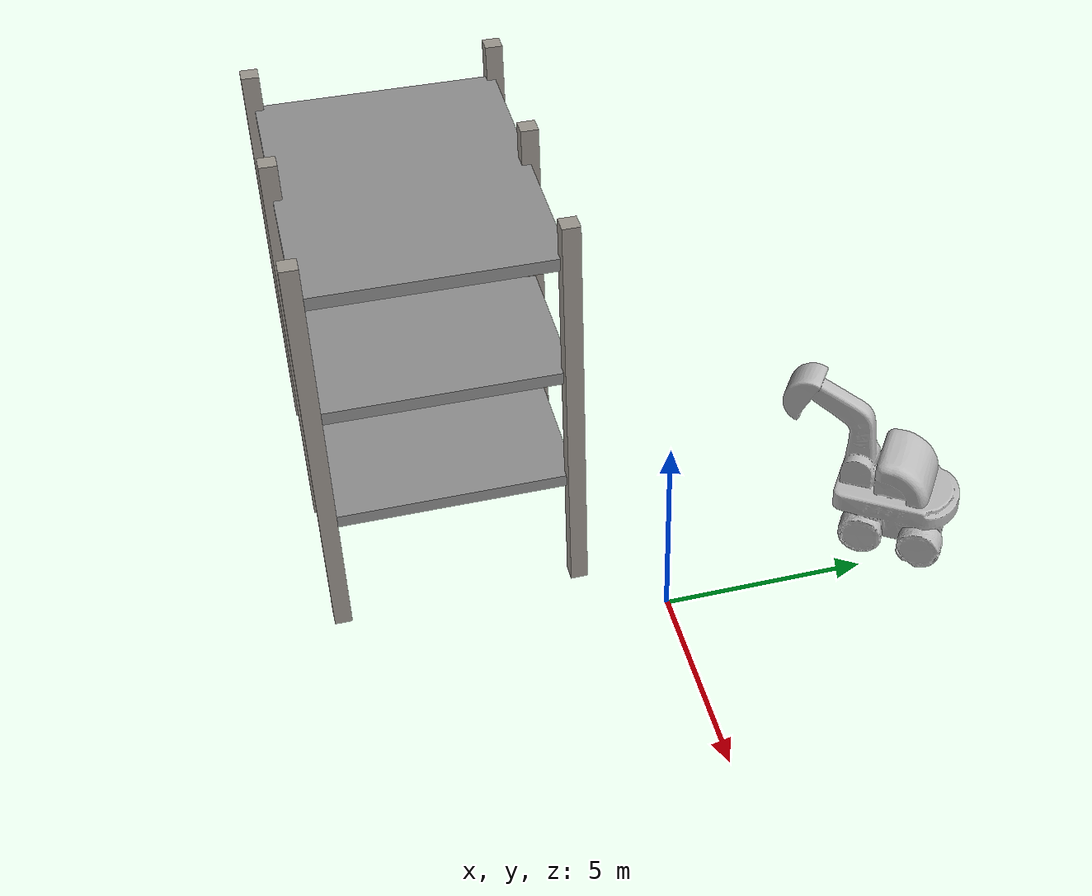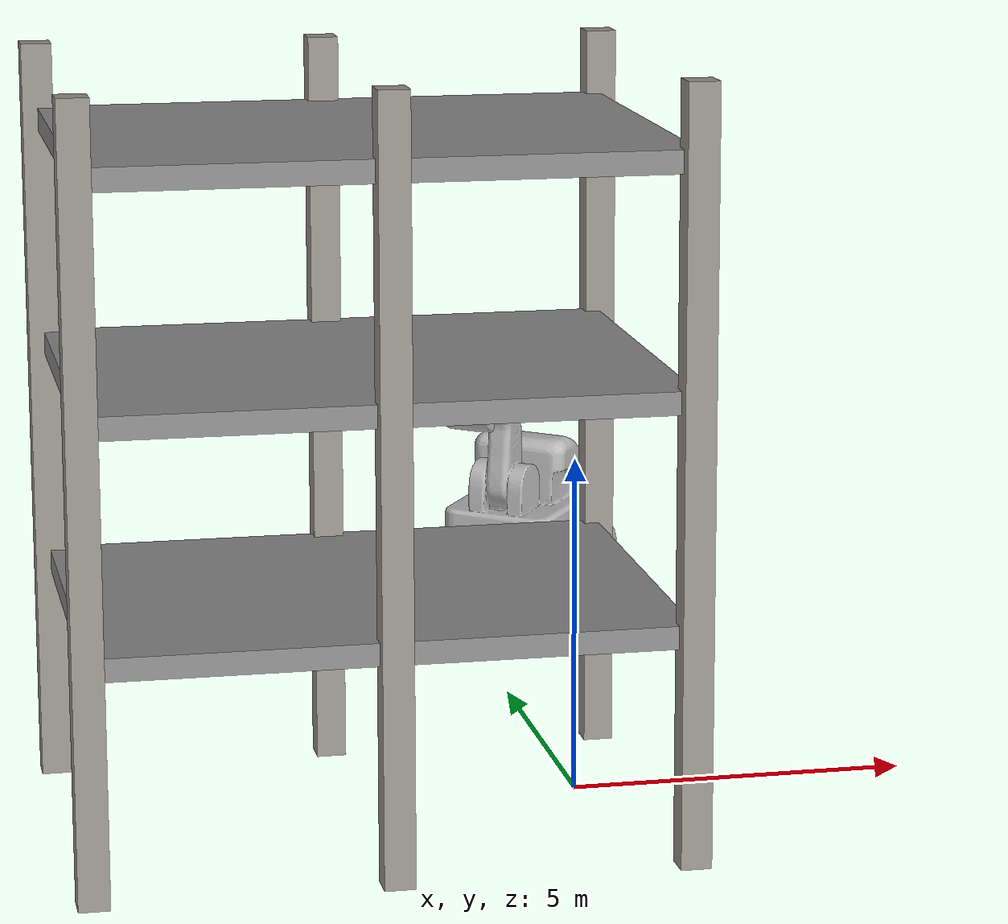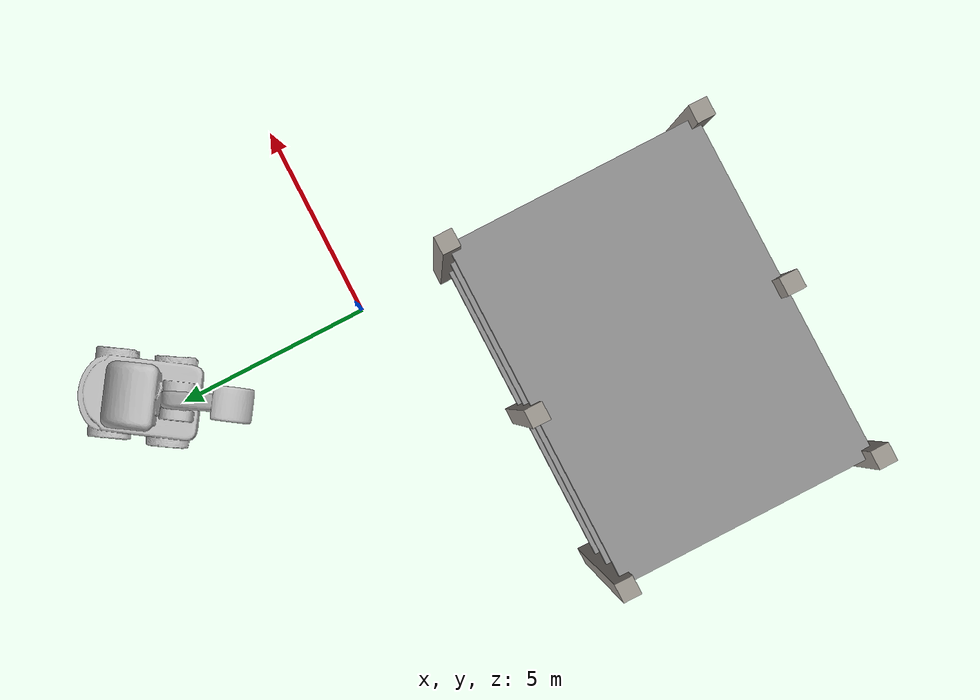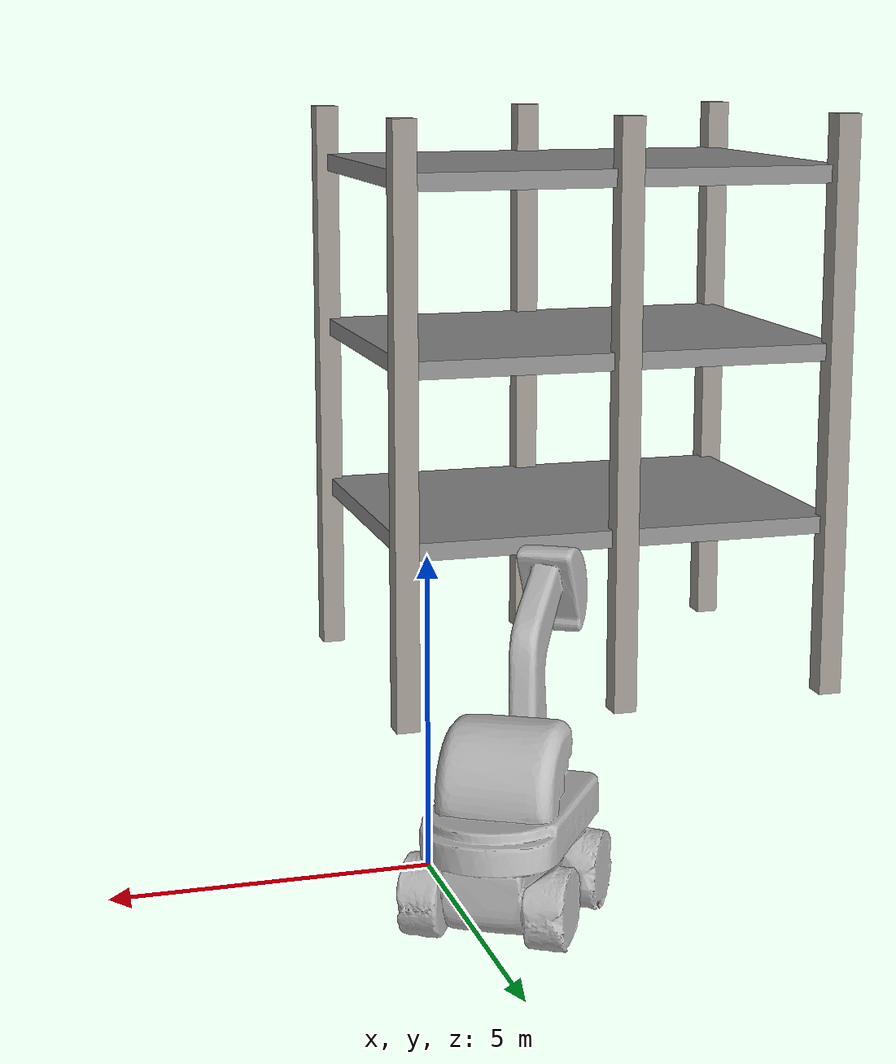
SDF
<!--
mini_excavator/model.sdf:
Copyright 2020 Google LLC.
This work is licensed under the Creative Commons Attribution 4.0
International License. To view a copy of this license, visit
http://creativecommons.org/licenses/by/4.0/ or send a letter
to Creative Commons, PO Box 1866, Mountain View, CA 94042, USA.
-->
<sdf version="1.6">
 <world name="construction_site">
  <physics name="4ms" type="ignored">
   <max_step_size>0.004</max_step_size>
   <real_time_factor>1.0</real_time_factor>
  </physics>
  <plugin filename="ignition-gazebo-physics-system" name="gz::sim::systems::Physics"/>
  <plugin filename="ignition-gazebo-scene-broadcaster-system" name="gz::sim::systems::SceneBroadcaster"/>
  <plugin filename="ignition-gazebo-user-commands-system" name="gz::sim::systems::UserCommands"/>
  <plugin filename="ignition-gazebo-sensors-system" name="gz::sim::systems::Sensors">
   <render_engine>ogre2</render_engine>
  </plugin>
  <light type="directional" name="sun">
   <pose>0 0 500 0 0 0</pose>
   <diffuse>0.8 0.8 0.8 1</diffuse>
   <specular>0.2 0.2 0.2 1</specular>
   <attenuation>
    <range>1000</range>
    <constant>0.9</constant>
    <linear>0.01</linear>
    <quadratic>0.001</quadratic>
   </attenuation>
   <direction>-0.5 0.1 -0.9</direction>
  </light>
  <include><name>building_frame</name><uri>model://building_frame</uri><pose>-4 -5 1.5 0 0 0</pose></include>
  <include><name>mini_excavator</name><uri>model://mini_excavator</uri><pose>0 5 1.5 0 0 -0.6</pose></include>
 </world>
</sdf>

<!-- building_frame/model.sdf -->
<sdf version="1.6">
  <model name="building_frame">
    <static>true</static>

    <link name="column_corner_pp">
      <pose>3.8 2.8 5.0 0 0 0</pose>
      <collision name="collision"><geometry><box><size>0.4 0.4 10.0</size></box></geometry></collision>
      <visual name="visual">
        <geometry><box><size>0.4 0.4 10.0</size></box></geometry>
        <material><ambient>0.55 0.53 0.5 1</ambient><diffuse>0.6 0.58 0.55 1</diffuse></material>
      </visual>
    </link>
    <link name="column_corner_pm">
      <pose>3.8 -2.8 5.0 0 0 0</pose>
      <collision name="collision"><geometry><box><size>0.4 0.4 10.0</size></box></geometry></collision>
      <visual name="visual">
        <geometry><box><size>0.4 0.4 10.0</size></box></geometry>
        <material><ambient>0.55 0.53 0.5 1</ambient><diffuse>0.6 0.58 0.55 1</diffuse></material>
      </visual>
    </link>
    <link name="column_corner_mp">
      <pose>-3.8 2.8 5.0 0 0 0</pose>
      <collision name="collision"><geometry><box><size>0.4 0.4 10.0</size></box></geometry></collision>
      <visual name="visual">
        <geometry><box><size>0.4 0.4 10.0</size></box></geometry>
        <material><ambient>0.55 0.53 0.5 1</ambient><diffuse>0.6 0.58 0.55 1</diffuse></material>
      </visual>
    </link>
    <link name="column_corner_mm">
      <pose>-3.8 -2.8 5.0 0 0 0</pose>
      <collision name="collision"><geometry><box><size>0.4 0.4 10.0</size></box></geometry></collision>
      <visual name="visual">
        <geometry><box><size>0.4 0.4 10.0</size></box></geometry>
        <material><ambient>0.55 0.53 0.5 1</ambient><diffuse>0.6 0.58 0.55 1</diffuse></material>
      </visual>
    </link>
    <link name="column_mid_p">
      <pose>0 2.8 5.0 0 0 0</pose>
      <collision name="collision"><geometry><box><size>0.4 0.4 10.0</size></box></geometry></collision>
      <visual name="visual">
        <geometry><box><size>0.4 0.4 10.0</size></box></geometry>
        <material><ambient>0.55 0.53 0.5 1</ambient><diffuse>0.6 0.58 0.55 1</diffuse></material>
      </visual>
    </link>
    <link name="column_mid_m">
      <pose>0 -2.8 5.0 0 0 0</pose>
      <collision name="collision"><geometry><box><size>0.4 0.4 10.0</size></box></geometry></collision>
      <visual name="visual">
        <geometry><box><size>0.4 0.4 10.0</size></box></geometry>
        <material><ambient>0.55 0.53 0.5 1</ambient><diffuse>0.6 0.58 0.55 1</diffuse></material>
      </visual>
    </link>

    <link name="floor_slab_1">
      <pose>0 0 3.0 0 0 0</pose>
      <collision name="collision"><geometry><box><size>7.6 5.6 0.3</size></box></geometry></collision>
      <visual name="visual">
        <geometry><box><size>7.6 5.6 0.3</size></box></geometry>
        <material><ambient>0.5 0.5 0.5 1</ambient><diffuse>0.55 0.55 0.55 1</diffuse></material>
      </visual>
    </link>
    <link name="floor_slab_2">
      <pose>0 0 6.0 0 0 0</pose>
      <collision name="collision"><geometry><box><size>7.6 5.6 0.3</size></box></geometry></collision>
      <visual name="visual">
        <geometry><box><size>7.6 5.6 0.3</size></box></geometry>
        <material><ambient>0.5 0.5 0.5 1</ambient><diffuse>0.55 0.55 0.55 1</diffuse></material>
      </visual>
    </link>
    <link name="floor_slab_3">
      <pose>0 0 9.0 0 0 0</pose>
      <collision name="collision"><geometry><box><size>7.6 5.6 0.3</size></box></geometry></collision>
      <visual name="visual">
        <geometry><box><size>7.6 5.6 0.3</size></box></geometry>
        <material><ambient>0.5 0.5 0.5 1</ambient><diffuse>0.55 0.55 0.55 1</diffuse></material>
      </visual>
    </link>
  </model>
</sdf>

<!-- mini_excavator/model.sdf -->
<sdf version="1.6">
  <model name="MINI_EXCAVATOR">
    <static>true</static>
    <link name="link_0">
      <visual name="visual">
        <geometry>
          <mesh>
            <uri>meshes/model.obj</uri>
            <scale>26 26 26</scale>
          </mesh>
        </geometry>
      </visual>
      <collision name="collision_0">
        <geometry>
          <mesh>
            <uri>meshes/model.obj</uri>
            <scale>26 26 26</scale>
          </mesh>
        </geometry>
      </collision>
    </link>
  </model>
</sdf>
